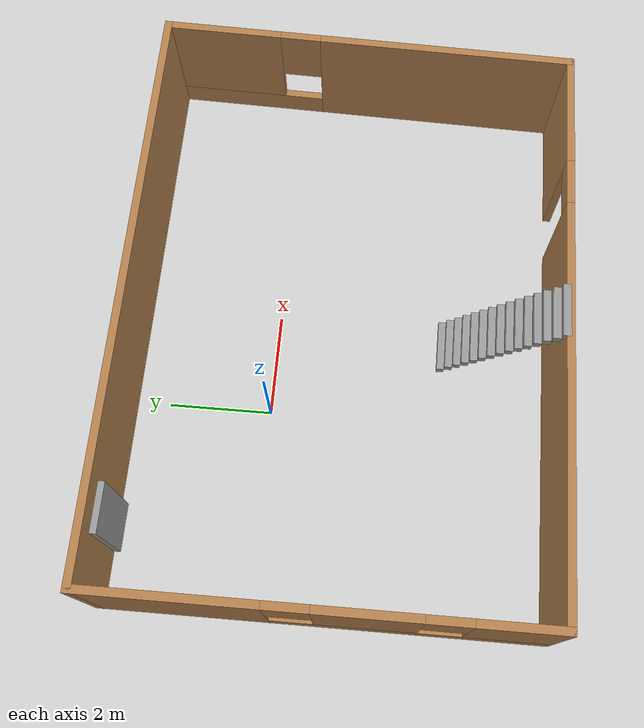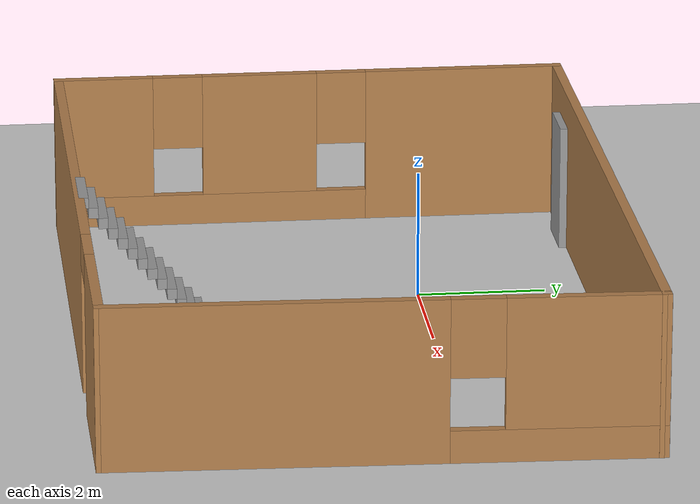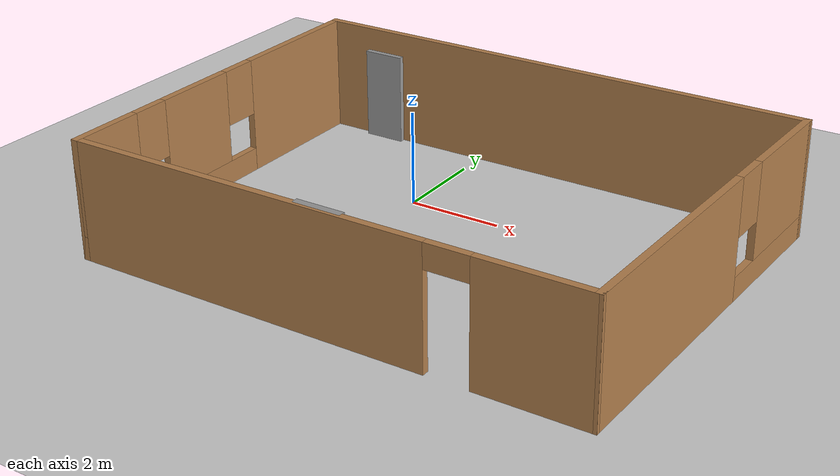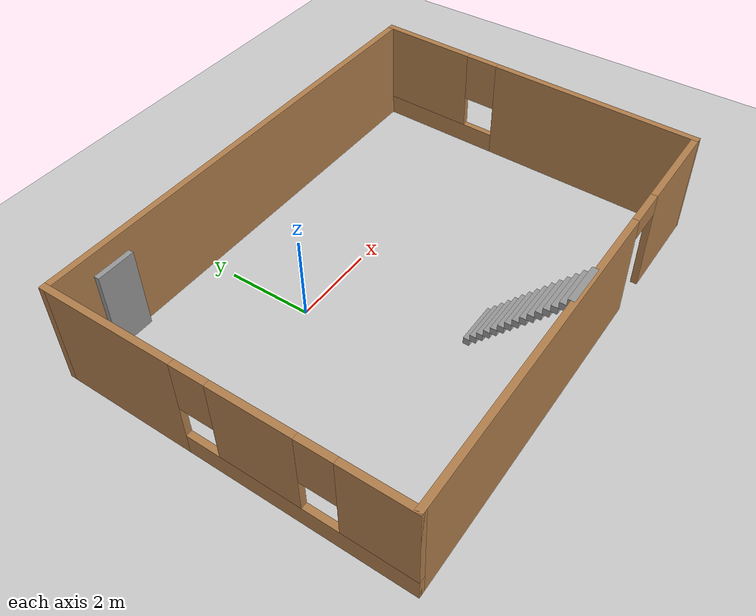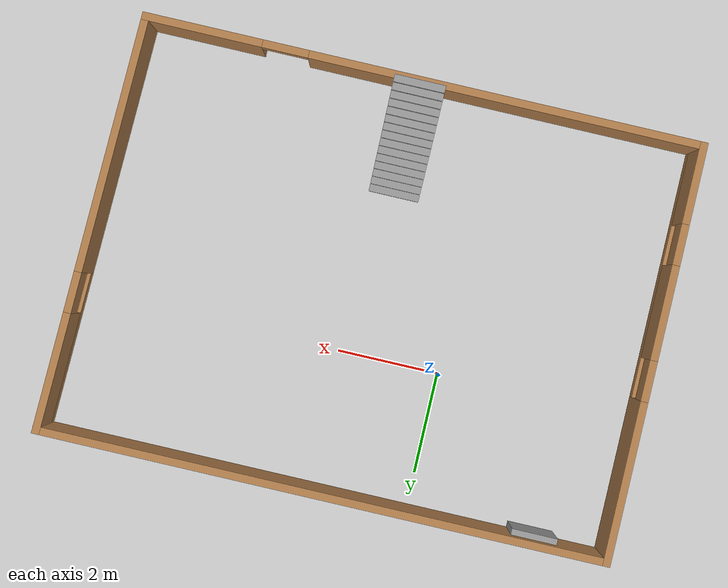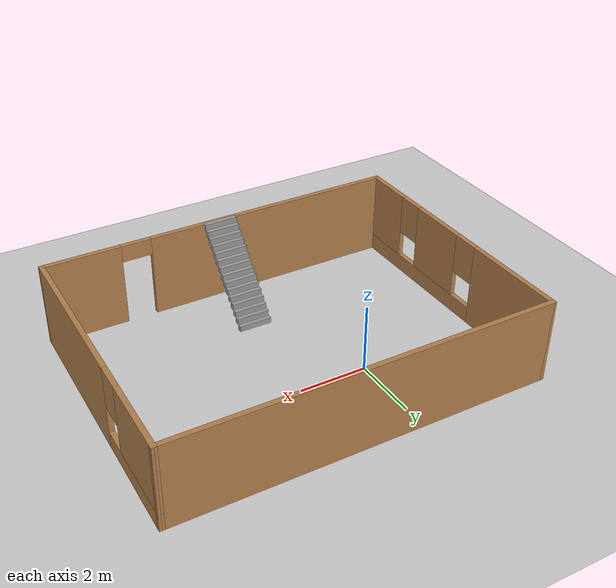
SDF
<sdf version="1.7">
 <world name="default">
  <light name="sun" type="directional">
   <pose>0 0 10 0 -0 0</pose>
   <diffuse>0.8 0.8 0.8 1</diffuse>
   <specular>0.2 0.2 0.2 1</specular>
   <attenuation>
    <range>1000</range>
    <constant>0.9</constant>
    <linear>0.01</linear>
    <quadratic>0.001</quadratic>
   </attenuation>
   <direction>-0.5 0.1 -0.9</direction>
   <spot><inner_angle>0</inner_angle><outer_angle>0</outer_angle><falloff>0</falloff></spot>
  </light>
  <model name="ground_plane">
   <static>1</static>
   <link name="link">
    <collision name="collision">
     <geometry><plane><normal>0 0 1</normal><size>100 100</size></plane></geometry>
     <surface>
      <contact><collide_bitmask>65535</collide_bitmask></contact>
      <friction><ode><mu>100</mu><mu2>50</mu2></ode></friction>
     </surface>
    </collision>
    <visual name="visual">
     <cast_shadows>0</cast_shadows>
     <geometry><plane><normal>0 0 1</normal><size>100 100</size></plane></geometry>
     <material>
      <script><uri>file://media/materials/scripts/gazebo.material</uri><name>Gazebo/Grey</name></script>
     </material>
    </visual>
   </link>
  </model>
  <gravity>0 0 -9.8</gravity>
  <magnetic_field>6e-06 2.3e-05 -4.2e-05</magnetic_field>
  <atmosphere type="adiabatic"/>
  <physics type="ode">
   <max_step_size>0.001</max_step_size>
   <real_time_factor>1</real_time_factor>
   <real_time_update_rate>1000</real_time_update_rate>
  </physics>
  <scene><ambient>0.4 0.4 0.4 1</ambient><background>0.7 0.7 0.7 1</background><shadows>1</shadows></scene>
  <audio><device>default</device></audio>
  <spherical_coordinates>
   <surface_model>EARTH_WGS84</surface_model>
   <latitude_deg>0</latitude_deg>
   <longitude_deg>0</longitude_deg>
   <elevation>0</elevation>
   <heading_deg>0</heading_deg>
  </spherical_coordinates>
  <model name="test">
   <pose>1.67836 -1.33768 0 0 -0 0</pose>
   <link name="Door_0">
    <collision name="Door_0_Collision">
     <geometry><box><size>0.9 0.17 2</size></box></geometry>
     <pose>0 0 1 0 -0 0</pose>
    </collision>
    <visual name="Door_0_Visual">
     <pose>0 0 1 0 -0 0</pose>
     <geometry><box><size>0.9 0.17 2</size></box></geometry>
     <material>
      <script><uri>file://media/materials/scripts/gazebo.material</uri><name>Gazebo/Grey</name></script>
     </material>
    </visual>
    <pose>-4.13519 3.93938 0 0 -0 0</pose>
   </link>
   <link name="Stairs_0">
    <visual name="Stairs_0_Visual_0">
     <pose>-0.043112 -1.93287 0.083333 0 -0 0</pose>
     <geometry><box><size>1 0.146489 0.166667</size></box></geometry>
     <material>
      <script><uri>file://media/materials/scripts/gazebo.material</uri><name>Gazebo/Grey</name></script>
      <ambient>1 1 1 1</ambient>
     </material>
     <meta><layer>0</layer></meta>
    </visual>
    <collision name="Stairs_0_Collision_0">
     <geometry><box><size>1 0.146489 0.166667</size></box></geometry>
     <pose>-0.043112 -1.93287 0.083333 0 -0 0</pose>
    </collision>
    <visual name="Stairs_0_Visual_1">
     <pose>-0.043112 -2.07936 0.25 0 -0 0</pose>
     <geometry><box><size>1 0.146489 0.166667</size></box></geometry>
     <material>
      <script><uri>file://media/materials/scripts/gazebo.material</uri><name>Gazebo/Grey</name></script>
      <ambient>1 1 1 1</ambient>
     </material>
     <meta><layer>0</layer></meta>
    </visual>
    <collision name="Stairs_0_Collision_1">
     <geometry><box><size>1 0.146489 0.166667</size></box></geometry>
     <pose>-0.043112 -2.07936 0.25 0 -0 0</pose>
    </collision>
    <visual name="Stairs_0_Visual_2">
     <pose>-0.043112 -2.22585 0.416667 0 -0 0</pose>
     <geometry><box><size>1 0.146489 0.166667</size></box></geometry>
     <material>
      <script><uri>file://media/materials/scripts/gazebo.material</uri><name>Gazebo/Grey</name></script>
      <ambient>1 1 1 1</ambient>
     </material>
     <meta><layer>0</layer></meta>
    </visual>
    <collision name="Stairs_0_Collision_2">
     <geometry><box><size>1 0.146489 0.166667</size></box></geometry>
     <pose>-0.043112 -2.22585 0.416667 0 -0 0</pose>
    </collision>
    <visual name="Stairs_0_Visual_3">
     <pose>-0.043112 -2.37234 0.583333 0 -0 0</pose>
     <geometry><box><size>1 0.146489 0.166667</size></box></geometry>
     <material>
      <script><uri>file://media/materials/scripts/gazebo.material</uri><name>Gazebo/Grey</name></script>
      <ambient>1 1 1 1</ambient>
     </material>
     <meta><layer>0</layer></meta>
    </visual>
    <collision name="Stairs_0_Collision_3">
     <geometry><box><size>1 0.146489 0.166667</size></box></geometry>
     <pose>-0.043112 -2.37234 0.583333 0 -0 0</pose>
    </collision>
    <visual name="Stairs_0_Visual_4">
     <pose>-0.043112 -2.51883 0.75 0 -0 0</pose>
     <geometry><box><size>1 0.146489 0.166667</size></box></geometry>
     <material>
      <script><uri>file://media/materials/scripts/gazebo.material</uri><name>Gazebo/Grey</name></script>
      <ambient>1 1 1 1</ambient>
     </material>
     <meta><layer>0</layer></meta>
    </visual>
    <collision name="Stairs_0_Collision_4">
     <geometry><box><size>1 0.146489 0.166667</size></box></geometry>
     <pose>-0.043112 -2.51883 0.75 0 -0 0</pose>
    </collision>
    <visual name="Stairs_0_Visual_5">
     <pose>-0.043112 -2.66531 0.916667 0 -0 0</pose>
     <geometry><box><size>1 0.146489 0.166667</size></box></geometry>
     <material>
      <script><uri>file://media/materials/scripts/gazebo.material</uri><name>Gazebo/Grey</name></script>
      <ambient>1 1 1 1</ambient>
     </material>
     <meta><layer>0</layer></meta>
    </visual>
    <collision name="Stairs_0_Collision_5">
     <geometry><box><size>1 0.146489 0.166667</size></box></geometry>
     <pose>-0.043112 -2.66531 0.916667 0 -0 0</pose>
    </collision>
    <visual name="Stairs_0_Visual_6">
     <pose>-0.043112 -2.8118 1.08333 0 -0 0</pose>
     <geometry><box><size>1 0.146489 0.166667</size></box></geometry>
     <material>
      <script><uri>file://media/materials/scripts/gazebo.material</uri><name>Gazebo/Grey</name></script>
      <ambient>1 1 1 1</ambient>
     </material>
     <meta><layer>0</layer></meta>
    </visual>
    <collision name="Stairs_0_Collision_6">
     <geometry><box><size>1 0.146489 0.166667</size></box></geometry>
     <pose>-0.043112 -2.8118 1.08333 0 -0 0</pose>
    </collision>
    <visual name="Stairs_0_Visual_7">
     <pose>-0.043112 -2.95829 1.25 0 -0 0</pose>
     <geometry><box><size>1 0.146489 0.166667</size></box></geometry>
     <material>
      <script><uri>file://media/materials/scripts/gazebo.material</uri><name>Gazebo/Grey</name></script>
      <ambient>1 1 1 1</ambient>
     </material>
     <meta><layer>0</layer></meta>
    </visual>
    <collision name="Stairs_0_Collision_7">
     <geometry><box><size>1 0.146489 0.166667</size></box></geometry>
     <pose>-0.043112 -2.95829 1.25 0 -0 0</pose>
    </collision>
    <visual name="Stairs_0_Visual_8">
     <pose>-0.043112 -3.10478 1.41667 0 -0 0</pose>
     <geometry><box><size>1 0.146489 0.166667</size></box></geometry>
     <material>
      <script><uri>file://media/materials/scripts/gazebo.material</uri><name>Gazebo/Grey</name></script>
      <ambient>1 1 1 1</ambient>
     </material>
     <meta><layer>0</layer></meta>
    </visual>
    <collision name="Stairs_0_Collision_8">
     <geometry><box><size>1 0.146489 0.166667</size></box></geometry>
     <pose>-0.043112 -3.10478 1.41667 0 -0 0</pose>
    </collision>
    <visual name="Stairs_0_Visual_9">
     <pose>-0.043112 -3.25127 1.58333 0 -0 0</pose>
     <geometry><box><size>1 0.146489 0.166667</size></box></geometry>
     <material>
      <script><uri>file://media/materials/scripts/gazebo.material</uri><name>Gazebo/Grey</name></script>
      <ambient>1 1 1 1</ambient>
     </material>
     <meta><layer>0</layer></meta>
    </visual>
    <collision name="Stairs_0_Collision_9">
     <geometry><box><size>1 0.146489 0.166667</size></box></geometry>
     <pose>-0.043112 -3.25127 1.58333 0 -0 0</pose>
    </collision>
    <visual name="Stairs_0_Visual_10">
     <pose>-0.043112 -3.39776 1.75 0 -0 0</pose>
     <geometry><box><size>1 0.146489 0.166667</size></box></geometry>
     <material>
      <script><uri>file://media/materials/scripts/gazebo.material</uri><name>Gazebo/Grey</name></script>
      <ambient>1 1 1 1</ambient>
     </material>
     <meta><layer>0</layer></meta>
    </visual>
    <collision name="Stairs_0_Collision_10">
     <geometry><box><size>1 0.146489 0.166667</size></box></geometry>
     <pose>-0.043112 -3.39776 1.75 0 -0 0</pose>
    </collision>
    <visual name="Stairs_0_Visual_11">
     <pose>-0.043112 -3.54425 1.91667 0 -0 0</pose>
     <geometry><box><size>1 0.146489 0.166667</size></box></geometry>
     <material>
      <script><uri>file://media/materials/scripts/gazebo.material</uri><name>Gazebo/Grey</name></script>
      <ambient>1 1 1 1</ambient>
     </material>
     <meta><layer>0</layer></meta>
    </visual>
    <collision name="Stairs_0_Collision_11">
     <geometry><box><size>1 0.146489 0.166667</size></box></geometry>
     <pose>-0.043112 -3.54425 1.91667 0 -0 0</pose>
    </collision>
    <visual name="Stairs_0_Visual_12">
     <pose>-0.043112 -3.69074 2.08333 0 -0 0</pose>
     <geometry><box><size>1 0.146489 0.166667</size></box></geometry>
     <material>
      <script><uri>file://media/materials/scripts/gazebo.material</uri><name>Gazebo/Grey</name></script>
      <ambient>1 1 1 1</ambient>
     </material>
     <meta><layer>0</layer></meta>
    </visual>
    <collision name="Stairs_0_Collision_12">
     <geometry><box><size>1 0.146489 0.166667</size></box></geometry>
     <pose>-0.043112 -3.69074 2.08333 0 -0 0</pose>
    </collision>
    <visual name="Stairs_0_Visual_13">
     <pose>-0.043112 -3.83722 2.25 0 -0 0</pose>
     <geometry><box><size>1 0.146489 0.166667</size></box></geometry>
     <material>
      <script><uri>file://media/materials/scripts/gazebo.material</uri><name>Gazebo/Grey</name></script>
      <ambient>1 1 1 1</ambient>
     </material>
     <meta><layer>0</layer></meta>
    </visual>
    <collision name="Stairs_0_Collision_13">
     <geometry><box><size>1 0.146489 0.166667</size></box></geometry>
     <pose>-0.043112 -3.83722 2.25 0 -0 0</pose>
    </collision>
    <visual name="Stairs_0_Visual_14">
     <pose>-0.043112 -3.98371 2.41667 0 -0 0</pose>
     <geometry><box><size>1 0.146489 0.166667</size></box></geometry>
     <material>
      <script><uri>file://media/materials/scripts/gazebo.material</uri><name>Gazebo/Grey</name></script>
      <ambient>1 1 1 1</ambient>
     </material>
     <meta><layer>0</layer></meta>
    </visual>
    <collision name="Stairs_0_Collision_14">
     <geometry><box><size>1 0.146489 0.166667</size></box></geometry>
     <pose>-0.043112 -3.98371 2.41667 0 -0 0</pose>
    </collision>
   </link>
   <link name="Wall_11">
    <pose>-5.55114 0 0 0 -0 -1.5708</pose>
    <visual name="Wall_11_Visual_0">
     <pose>-2.52329 0 1.25 0 -0 0</pose>
     <geometry><box><size>3.20342 0.15 2.5</size></box></geometry>
     <material>
      <script><uri>file://media/materials/scripts/gazebo.material</uri><name>Gazebo/Wood</name></script>
      <ambient>1 1 1 1</ambient>
     </material>
     <meta><layer>0</layer></meta>
    </visual>
    <collision name="Wall_11_Collision_0">
     <geometry><box><size>3.20342 0.15 2.5</size></box></geometry>
     <pose>-2.52329 0 1.25 0 -0 0</pose>
    </collision>
    <visual name="Wall_11_Visual_1">
     <pose>1.60171 0 0.25 0 -0 0</pose>
     <geometry><box><size>5.04658 0.15 0.5</size></box></geometry>
     <material>
      <script><uri>file://media/materials/scripts/gazebo.material</uri><name>Gazebo/Wood</name></script>
      <ambient>1 1 1 1</ambient>
     </material>
     <meta><layer>0</layer></meta>
    </visual>
    <collision name="Wall_11_Collision_1">
     <geometry><box><size>5.04658 0.15 0.5</size></box></geometry>
     <pose>1.60171 0 0.25 0 -0 0</pose>
    </collision>
    <visual name="Wall_11_Visual_2">
     <pose>0.80435 0 1.5 0 -0 0</pose>
     <geometry><box><size>1.85186 0.15 2</size></box></geometry>
     <material>
      <script><uri>file://media/materials/scripts/gazebo.material</uri><name>Gazebo/Wood</name></script>
      <ambient>1 1 1 1</ambient>
     </material>
     <meta><layer>0</layer></meta>
    </visual>
    <collision name="Wall_11_Collision_2">
     <geometry><box><size>1.85186 0.15 2</size></box></geometry>
     <pose>0.80435 0 1.5 0 -0 0</pose>
    </collision>
    <visual name="Wall_11_Visual_3">
     <pose>3.32764 0 1.5 0 -0 0</pose>
     <geometry><box><size>1.59472 0.15 2</size></box></geometry>
     <material>
      <script><uri>file://media/materials/scripts/gazebo.material</uri><name>Gazebo/Wood</name></script>
      <ambient>1 1 1 1</ambient>
     </material>
     <meta><layer>0</layer></meta>
    </visual>
    <collision name="Wall_11_Collision_3">
     <geometry><box><size>1.59472 0.15 2</size></box></geometry>
     <pose>3.32764 0 1.5 0 -0 0</pose>
    </collision>
    <visual name="Wall_11_Visual_4">
     <pose>-0.521582 0 1.9 0 -0 0</pose>
     <geometry><box><size>0.8 0.15 1.2</size></box></geometry>
     <material>
      <script><uri>file://media/materials/scripts/gazebo.material</uri><name>Gazebo/Wood</name></script>
      <ambient>1 1 1 1</ambient>
     </material>
     <meta><layer>0</layer></meta>
    </visual>
    <collision name="Wall_11_Collision_4">
     <geometry><box><size>0.8 0.15 1.2</size></box></geometry>
     <pose>-0.521582 0 1.9 0 -0 0</pose>
    </collision>
    <visual name="Wall_11_Visual_5">
     <pose>2.13028 0 1.9 0 -0 0</pose>
     <geometry><box><size>0.8 0.15 1.2</size></box></geometry>
     <material>
      <script><uri>file://media/materials/scripts/gazebo.material</uri><name>Gazebo/Wood</name></script>
      <ambient>1 1 1 1</ambient>
     </material>
     <meta><layer>0</layer></meta>
    </visual>
    <collision name="Wall_11_Collision_5">
     <geometry><box><size>0.8 0.15 1.2</size></box></geometry>
     <pose>2.13028 0 1.9 0 -0 0</pose>
    </collision>
   </link>
   <link name="Wall_12">
    <pose>-0.126139 -4.05 0 0 -0 0</pose>
    <visual name="Wall_12_Visual_0">
     <pose>-1.62171 0 1.25 0 -0 0</pose>
     <geometry><box><size>7.75657 0.15 2.5</size></box></geometry>
     <material>
      <script><uri>file://media/materials/scripts/gazebo.material</uri><name>Gazebo/Wood</name></script>
      <ambient>1 1 1 1</ambient>
     </material>
     <meta><layer>0</layer></meta>
    </visual>
    <collision name="Wall_12_Collision_0">
     <geometry><box><size>7.75657 0.15 2.5</size></box></geometry>
     <pose>-1.62171 0 1.25 0 -0 0</pose>
    </collision>
    <visual name="Wall_12_Visual_1">
     <pose>4.32829 0 1.25 0 -0 0</pose>
     <geometry><box><size>2.34343 0.15 2.5</size></box></geometry>
     <material>
      <script><uri>file://media/materials/scripts/gazebo.material</uri><name>Gazebo/Wood</name></script>
      <ambient>1 1 1 1</ambient>
     </material>
     <meta><layer>0</layer></meta>
    </visual>
    <collision name="Wall_12_Collision_1">
     <geometry><box><size>2.34343 0.15 2.5</size></box></geometry>
     <pose>4.32829 0 1.25 0 -0 0</pose>
    </collision>
    <visual name="Wall_12_Visual_2">
     <pose>2.70657 0 2.25 0 -0 0</pose>
     <geometry><box><size>0.9 0.15 0.5</size></box></geometry>
     <material>
      <script><uri>file://media/materials/scripts/gazebo.material</uri><name>Gazebo/Wood</name></script>
      <ambient>1 1 1 1</ambient>
     </material>
     <meta><layer>0</layer></meta>
    </visual>
    <collision name="Wall_12_Collision_2">
     <geometry><box><size>0.9 0.15 0.5</size></box></geometry>
     <pose>2.70657 0 2.25 0 -0 0</pose>
    </collision>
   </link>
   <link name="Wall_13">
    <pose>5.42386 0 0 0 -0 1.53994</pose>
    <visual name="Wall_13_Visual_0">
     <pose>-1.58698 0 1.25 0 -0 0</pose>
     <geometry><box><size>5.0799 0.15 2.5</size></box></geometry>
     <material>
      <script><uri>file://media/materials/scripts/gazebo.material</uri><name>Gazebo/Wood</name></script>
      <ambient>1 1 1 1</ambient>
     </material>
     <meta><layer>0</layer></meta>
    </visual>
    <collision name="Wall_13_Collision_0">
     <geometry><box><size>5.0799 0.15 2.5</size></box></geometry>
     <pose>-1.58698 0 1.25 0 -0 0</pose>
    </collision>
    <visual name="Wall_13_Visual_1">
     <pose>2.53995 0 0.25 0 -0 0</pose>
     <geometry><box><size>3.17396 0.15 0.5</size></box></geometry>
     <material>
      <script><uri>file://media/materials/scripts/gazebo.material</uri><name>Gazebo/Wood</name></script>
      <ambient>1 1 1 1</ambient>
     </material>
     <meta><layer>0</layer></meta>
    </visual>
    <collision name="Wall_13_Collision_1">
     <geometry><box><size>3.17396 0.15 0.5</size></box></geometry>
     <pose>2.53995 0 0.25 0 -0 0</pose>
    </collision>
    <visual name="Wall_13_Visual_2">
     <pose>2.93995 0 1.5 0 -0 0</pose>
     <geometry><box><size>2.37396 0.15 2</size></box></geometry>
     <material>
      <script><uri>file://media/materials/scripts/gazebo.material</uri><name>Gazebo/Wood</name></script>
      <ambient>1 1 1 1</ambient>
     </material>
     <meta><layer>0</layer></meta>
    </visual>
    <collision name="Wall_13_Collision_2">
     <geometry><box><size>2.37396 0.15 2</size></box></geometry>
     <pose>2.93995 0 1.5 0 -0 0</pose>
    </collision>
    <visual name="Wall_13_Visual_3">
     <pose>1.35297 0 1.9 0 -0 0</pose>
     <geometry><box><size>0.8 0.15 1.2</size></box></geometry>
     <material>
      <script><uri>file://media/materials/scripts/gazebo.material</uri><name>Gazebo/Wood</name></script>
      <ambient>1 1 1 1</ambient>
     </material>
     <meta><layer>0</layer></meta>
    </visual>
    <collision name="Wall_13_Collision_3">
     <geometry><box><size>0.8 0.15 1.2</size></box></geometry>
     <pose>1.35297 0 1.9 0 -0 0</pose>
    </collision>
   </link>
   <link name="Wall_7">
    <collision name="Wall_7_Collision">
     <geometry><box><size>11.25 0.15 2.5</size></box></geometry>
     <pose>0 0 1.25 0 -0 0</pose>
    </collision>
    <visual name="Wall_7_Visual">
     <pose>0 0 1.25 0 -0 0</pose>
     <geometry><box><size>11.25 0.15 2.5</size></box></geometry>
     <material>
      <script><uri>file://media/materials/scripts/gazebo.material</uri><name>Gazebo/Wood</name></script>
      <ambient>1 1 1 1</ambient>
     </material>
     <meta><layer>0</layer></meta>
    </visual>
    <pose>-0.001139 4.05 0 0 -0 0</pose>
   </link>
   <static>1</static>
  </model>
 </world>
</sdf>
